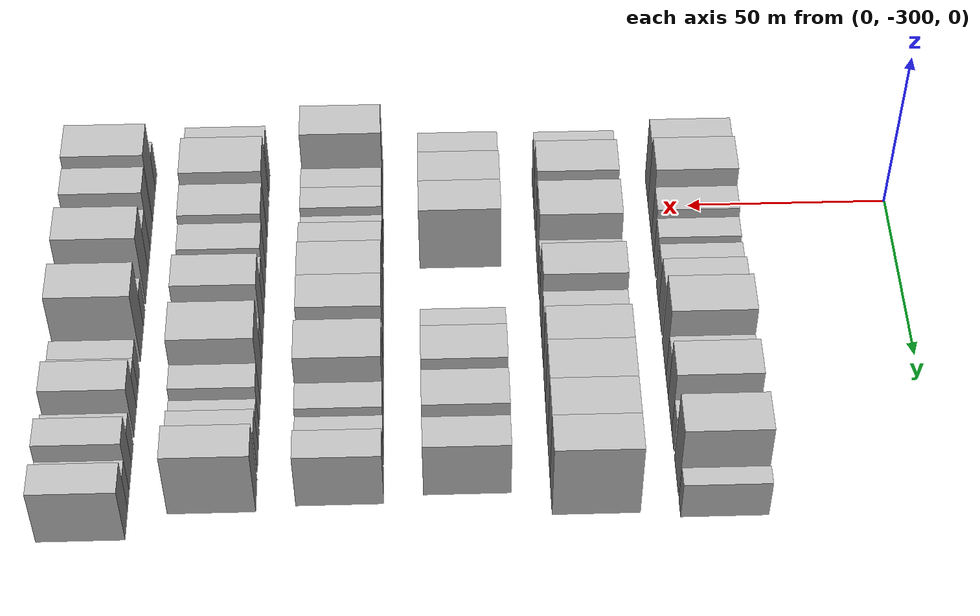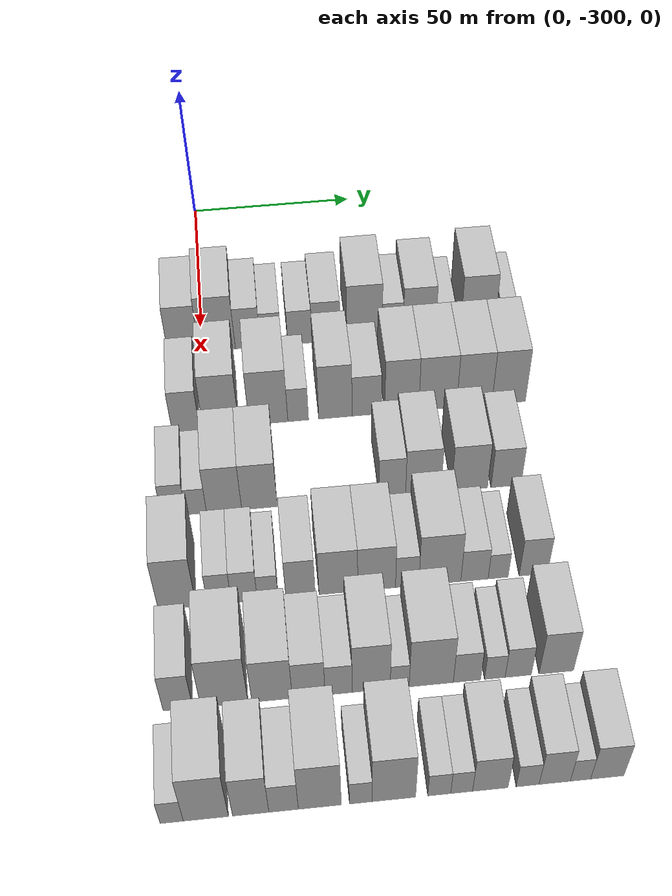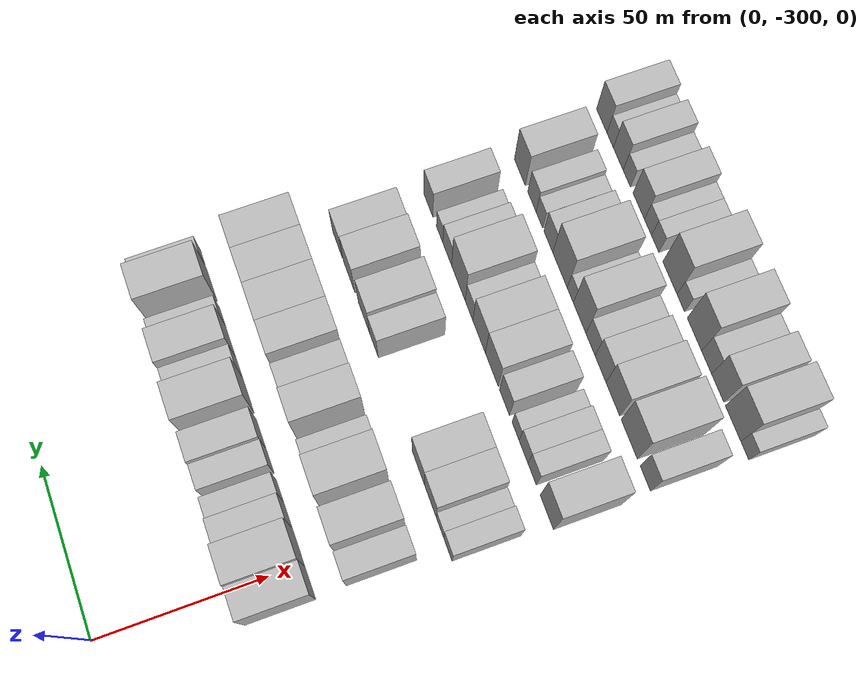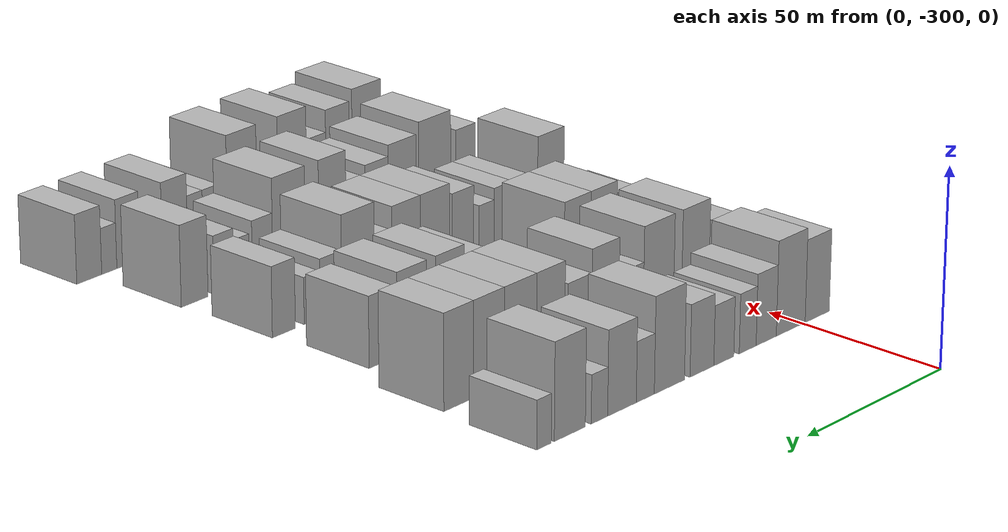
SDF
<sdf version="1.6">
 <world name="default">
  <model name="building_24">
   <static>1</static>
   <pose>50.0000 -305.5081 0 0.000000 0.000000 0.000000</pose>
   <link name="link">
    <pose>0 0 10.50 0 0 0</pose>
    <collision name="collision"><geometry><box><size>20.0000 9.3333 21.0000</size></box></geometry></collision>
    <visual name="visual">
     <cast_shadows>0</cast_shadows>
     <geometry><box><size>20.0000 9.3333 21.0000</size></box></geometry>
     <material>
      <script>
       <uri>model://HANNAS_wall/materials/scripts</uri>
       <uri>model://HANNAS_wall/materials/textures</uri>
       <name>vrc/HANNAS_wall</name>
      </script>
     </material>
    </visual>
   </link>
  </model>
  <model name="building_25">
   <static>1</static>
   <pose>50.0000 -295.3437 0 0.000000 0.000000 0.000000</pose>
   <link name="link">
    <pose>0 0 12.00 0 0 0</pose>
    <collision name="collision"><geometry><box><size>20.0000 10.9955 24.0000</size></box></geometry></collision>
    <visual name="visual">
     <cast_shadows>0</cast_shadows>
     <geometry><box><size>20.0000 10.9955 24.0000</size></box></geometry>
     <material>
      <script>
       <uri>model://HANNAS_wall/materials/scripts</uri>
       <uri>model://HANNAS_wall/materials/textures</uri>
       <name>vrc/HANNAS_wall</name>
      </script>
     </material>
    </visual>
   </link>
  </model>
  <model name="building_26">
   <static>1</static>
   <pose>50.0000 -286.0446 0 0.000000 0.000000 0.000000</pose>
   <link name="link">
    <pose>0 0 9.00 0 0 0</pose>
    <collision name="collision"><geometry><box><size>20.0000 7.6027 18.0000</size></box></geometry></collision>
    <visual name="visual">
     <cast_shadows>0</cast_shadows>
     <geometry><box><size>20.0000 7.6027 18.0000</size></box></geometry>
     <material>
      <script>
       <uri>model://HANNAS_wall/materials/scripts</uri>
       <uri>model://HANNAS_wall/materials/textures</uri>
       <name>vrc/HANNAS_wall</name>
      </script>
     </material>
    </visual>
   </link>
  </model>
  <model name="building_27">
   <static>1</static>
   <pose>50.0000 -279.0902 0 0.000000 0.000000 0.000000</pose>
   <link name="link">
    <pose>0 0 7.50 0 0 0</pose>
    <collision name="collision"><geometry><box><size>20.0000 6.3062 15.0000</size></box></geometry></collision>
    <visual name="visual">
     <cast_shadows>0</cast_shadows>
     <geometry><box><size>20.0000 6.3062 15.0000</size></box></geometry>
     <material>
      <script>
       <uri>model://HANNAS_wall/materials/scripts</uri>
       <uri>model://HANNAS_wall/materials/textures</uri>
       <name>vrc/HANNAS_wall</name>
      </script>
     </material>
    </visual>
   </link>
  </model>
  <model name="building_28">
   <static>1</static>
   <pose>50.0000 -270.2554 0 0.000000 0.000000 0.000000</pose>
   <link name="link">
    <pose>0 0 7.50 0 0 0</pose>
    <collision name="collision"><geometry><box><size>20.0000 7.3635 15.0000</size></box></geometry></collision>
    <visual name="visual">
     <cast_shadows>0</cast_shadows>
     <geometry><box><size>20.0000 7.3635 15.0000</size></box></geometry>
     <material>
      <script>
       <uri>model://HANNAS_wall/materials/scripts</uri>
       <uri>model://HANNAS_wall/materials/textures</uri>
       <name>vrc/HANNAS_wall</name>
      </script>
     </material>
    </visual>
   </link>
  </model>
  <model name="building_29">
   <static>1</static>
   <pose>50.0000 -262.2435 0 0.000000 0.000000 0.000000</pose>
   <link name="link">
    <pose>0 0 9.00 0 0 0</pose>
    <collision name="collision"><geometry><box><size>20.0000 8.6604 18.0000</size></box></geometry></collision>
    <visual name="visual">
     <cast_shadows>0</cast_shadows>
     <geometry><box><size>20.0000 8.6604 18.0000</size></box></geometry>
     <material>
      <script>
       <uri>model://HANNAS_wall/materials/scripts</uri>
       <uri>model://HANNAS_wall/materials/textures</uri>
       <name>vrc/HANNAS_wall</name>
      </script>
     </material>
    </visual>
   </link>
  </model>
  <model name="building_30">
   <static>1</static>
   <pose>50.0000 -250.5087 0 0.000000 0.000000 0.000000</pose>
   <link name="link">
    <pose>0 0 12.00 0 0 0</pose>
    <collision name="collision"><geometry><box><size>20.0000 10.8093 24.0000</size></box></geometry></collision>
    <visual name="visual">
     <cast_shadows>0</cast_shadows>
     <geometry><box><size>20.0000 10.8093 24.0000</size></box></geometry>
     <material>
      <script>
       <uri>model://HANNAS_wall/materials/scripts</uri>
       <uri>model://HANNAS_wall/materials/textures</uri>
       <name>vrc/HANNAS_wall</name>
      </script>
     </material>
    </visual>
   </link>
  </model>
  <model name="building_31">
   <static>1</static>
   <pose>50.0000 -241.9129 0 0.000000 0.000000 0.000000</pose>
   <link name="link">
    <pose>0 0 7.50 0 0 0</pose>
    <collision name="collision"><geometry><box><size>20.0000 6.3821 15.0000</size></box></geometry></collision>
    <visual name="visual">
     <cast_shadows>0</cast_shadows>
     <geometry><box><size>20.0000 6.3821 15.0000</size></box></geometry>
     <material>
      <script>
       <uri>model://HANNAS_wall/materials/scripts</uri>
       <uri>model://HANNAS_wall/materials/textures</uri>
       <name>vrc/HANNAS_wall</name>
      </script>
     </material>
    </visual>
   </link>
  </model>
  <model name="building_32">
   <static>1</static>
   <pose>50.0000 -233.7276 0 0.000000 0.000000 0.000000</pose>
   <link name="link">
    <pose>0 0 10.50 0 0 0</pose>
    <collision name="collision"><geometry><box><size>20.0000 9.9886 21.0000</size></box></geometry></collision>
    <visual name="visual">
     <cast_shadows>0</cast_shadows>
     <geometry><box><size>20.0000 9.9886 21.0000</size></box></geometry>
     <material>
      <script>
       <uri>model://HANNAS_wall/materials/scripts</uri>
       <uri>model://HANNAS_wall/materials/textures</uri>
       <name>vrc/HANNAS_wall</name>
      </script>
     </material>
    </visual>
   </link>
  </model>
  <model name="building_33">
   <static>1</static>
   <pose>50.0000 -225.8891 0 0.000000 0.000000 0.000000</pose>
   <link name="link">
    <pose>0 0 6.00 0 0 0</pose>
    <collision name="collision"><geometry><box><size>20.0000 5.6884 12.0000</size></box></geometry></collision>
    <visual name="visual">
     <cast_shadows>0</cast_shadows>
     <geometry><box><size>20.0000 5.6884 12.0000</size></box></geometry>
     <material>
      <script>
       <uri>model://HANNAS_wall/materials/scripts</uri>
       <uri>model://HANNAS_wall/materials/textures</uri>
       <name>vrc/HANNAS_wall</name>
      </script>
     </material>
    </visual>
   </link>
  </model>
  <model name="building_34">
   <static>1</static>
   <pose>50.0000 -215.7499 0 0.000000 0.000000 0.000000</pose>
   <link name="link">
    <pose>0 0 12.00 0 0 0</pose>
    <collision name="collision"><geometry><box><size>20.0000 10.5898 24.0000</size></box></geometry></collision>
    <visual name="visual">
     <cast_shadows>0</cast_shadows>
     <geometry><box><size>20.0000 10.5898 24.0000</size></box></geometry>
     <material>
      <script>
       <uri>model://HANNAS_wall/materials/scripts</uri>
       <uri>model://HANNAS_wall/materials/textures</uri>
       <name>vrc/HANNAS_wall</name>
      </script>
     </material>
    </visual>
   </link>
  </model>
  <model name="building_35">
   <static>1</static>
   <pose>50.0000 -207.0092 0 0.000000 0.000000 0.000000</pose>
   <link name="link">
    <pose>0 0 6.00 0 0 0</pose>
    <collision name="collision"><geometry><box><size>20.0000 4.8917 12.0000</size></box></geometry></collision>
    <visual name="visual">
     <cast_shadows>0</cast_shadows>
     <geometry><box><size>20.0000 4.8917 12.0000</size></box></geometry>
     <material>
      <script>
       <uri>model://HANNAS_wall/materials/scripts</uri>
       <uri>model://HANNAS_wall/materials/textures</uri>
       <name>vrc/HANNAS_wall</name>
      </script>
     </material>
    </visual>
   </link>
  </model>
  <model name="building_136">
   <static>1</static>
   <pose>79.0000 -305.5869 0 0.000000 0.000000 0.000000</pose>
   <link name="link">
    <pose>0 0 9.00 0 0 0</pose>
    <collision name="collision"><geometry><box><size>20.0000 7.9473 18.0000</size></box></geometry></collision>
    <visual name="visual">
     <cast_shadows>0</cast_shadows>
     <geometry><box><size>20.0000 7.9473 18.0000</size></box></geometry>
     <material>
      <script>
       <uri>model://HANNAS_wall/materials/scripts</uri>
       <uri>model://HANNAS_wall/materials/textures</uri>
       <name>vrc/HANNAS_wall</name>
      </script>
     </material>
    </visual>
   </link>
  </model>
  <model name="building_137">
   <static>1</static>
   <pose>79.0000 -295.4391 0 0.000000 0.000000 0.000000</pose>
   <link name="link">
    <pose>0 0 12.00 0 0 0</pose>
    <collision name="collision"><geometry><box><size>20.0000 10.3483 24.0000</size></box></geometry></collision>
    <visual name="visual">
     <cast_shadows>0</cast_shadows>
     <geometry><box><size>20.0000 10.3483 24.0000</size></box></geometry>
     <material>
      <script>
       <uri>model://HANNAS_wall/materials/scripts</uri>
       <uri>model://HANNAS_wall/materials/textures</uri>
       <name>vrc/HANNAS_wall</name>
      </script>
     </material>
    </visual>
   </link>
  </model>
  <model name="building_138">
   <static>1</static>
   <pose>79.0000 -281.6261 0 0.000000 0.000000 0.000000</pose>
   <link name="link">
    <pose>0 0 12.00 0 0 0</pose>
    <collision name="collision"><geometry><box><size>20.0000 11.2776 24.0000</size></box></geometry></collision>
    <visual name="visual">
     <cast_shadows>0</cast_shadows>
     <geometry><box><size>20.0000 11.2776 24.0000</size></box></geometry>
     <material>
      <script>
       <uri>model://HANNAS_wall/materials/scripts</uri>
       <uri>model://HANNAS_wall/materials/textures</uri>
       <name>vrc/HANNAS_wall</name>
      </script>
     </material>
    </visual>
   </link>
  </model>
  <model name="building_139">
   <static>1</static>
   <pose>79.0000 -272.9821 0 0.000000 0.000000 0.000000</pose>
   <link name="link">
    <pose>0 0 7.50 0 0 0</pose>
    <collision name="collision"><geometry><box><size>20.0000 6.0104 15.0000</size></box></geometry></collision>
    <visual name="visual">
     <cast_shadows>0</cast_shadows>
     <geometry><box><size>20.0000 6.0104 15.0000</size></box></geometry>
     <material>
      <script>
       <uri>model://HANNAS_wall/materials/scripts</uri>
       <uri>model://HANNAS_wall/materials/textures</uri>
       <name>vrc/HANNAS_wall</name>
      </script>
     </material>
    </visual>
   </link>
  </model>
  <model name="building_140">
   <static>1</static>
   <pose>79.0000 -262.0751 0 0.000000 0.000000 0.000000</pose>
   <link name="link">
    <pose>0 0 12.00 0 0 0</pose>
    <collision name="collision"><geometry><box><size>20.0000 9.8037 24.0000</size></box></geometry></collision>
    <visual name="visual">
     <cast_shadows>0</cast_shadows>
     <geometry><box><size>20.0000 9.8037 24.0000</size></box></geometry>
     <material>
      <script>
       <uri>model://HANNAS_wall/materials/scripts</uri>
       <uri>model://HANNAS_wall/materials/textures</uri>
       <name>vrc/HANNAS_wall</name>
      </script>
     </material>
    </visual>
   </link>
  </model>
  <model name="building_141">
   <static>1</static>
   <pose>79.0000 -252.8849 0 0.000000 0.000000 0.000000</pose>
   <link name="link">
    <pose>0 0 9.00 0 0 0</pose>
    <collision name="collision"><geometry><box><size>20.0000 8.5766 18.0000</size></box></geometry></collision>
    <visual name="visual">
     <cast_shadows>0</cast_shadows>
     <geometry><box><size>20.0000 8.5766 18.0000</size></box></geometry>
     <material>
      <script>
       <uri>model://HANNAS_wall/materials/scripts</uri>
       <uri>model://HANNAS_wall/materials/textures</uri>
       <name>vrc/HANNAS_wall</name>
      </script>
     </material>
    </visual>
   </link>
  </model>
  <model name="building_142">
   <static>1</static>
   <pose>79.0000 -242.6174 0 0.000000 0.000000 0.000000</pose>
   <link name="link">
    <pose>0 0 12.00 0 0 0</pose>
    <collision name="collision"><geometry><box><size>20.0000 9.9583 24.0000</size></box></geometry></collision>
    <visual name="visual">
     <cast_shadows>0</cast_shadows>
     <geometry><box><size>20.0000 9.9583 24.0000</size></box></geometry>
     <material>
      <script>
       <uri>model://HANNAS_wall/materials/scripts</uri>
       <uri>model://HANNAS_wall/materials/textures</uri>
       <name>vrc/HANNAS_wall</name>
      </script>
     </material>
    </visual>
   </link>
  </model>
  <model name="building_143">
   <static>1</static>
   <pose>79.0000 -232.0406 0 0.000000 0.000000 0.000000</pose>
   <link name="link">
    <pose>0 0 12.00 0 0 0</pose>
    <collision name="collision"><geometry><box><size>20.0000 11.1955 24.0000</size></box></geometry></collision>
    <visual name="visual">
     <cast_shadows>0</cast_shadows>
     <geometry><box><size>20.0000 11.1955 24.0000</size></box></geometry>
     <material>
      <script>
       <uri>model://HANNAS_wall/materials/scripts</uri>
       <uri>model://HANNAS_wall/materials/textures</uri>
       <name>vrc/HANNAS_wall</name>
      </script>
     </material>
    </visual>
   </link>
  </model>
  <model name="building_144">
   <static>1</static>
   <pose>79.0000 -221.2223 0 0.000000 0.000000 0.000000</pose>
   <link name="link">
    <pose>0 0 12.00 0 0 0</pose>
    <collision name="collision"><geometry><box><size>20.0000 10.4411 24.0000</size></box></geometry></collision>
    <visual name="visual">
     <cast_shadows>0</cast_shadows>
     <geometry><box><size>20.0000 10.4411 24.0000</size></box></geometry>
     <material>
      <script>
       <uri>model://HANNAS_wall/materials/scripts</uri>
       <uri>model://HANNAS_wall/materials/textures</uri>
       <name>vrc/HANNAS_wall</name>
      </script>
     </material>
    </visual>
   </link>
  </model>
  <model name="building_145">
   <static>1</static>
   <pose>79.0000 -211.0286 0 0.000000 0.000000 0.000000</pose>
   <link name="link">
    <pose>0 0 12.00 0 0 0</pose>
    <collision name="collision"><geometry><box><size>20.0000 9.9463 24.0000</size></box></geometry></collision>
    <visual name="visual">
     <cast_shadows>0</cast_shadows>
     <geometry><box><size>20.0000 9.9463 24.0000</size></box></geometry>
     <material>
      <script>
       <uri>model://HANNAS_wall/materials/scripts</uri>
       <uri>model://HANNAS_wall/materials/textures</uri>
       <name>vrc/HANNAS_wall</name>
      </script>
     </material>
    </visual>
   </link>
  </model>
  <model name="building_243">
   <static>1</static>
   <pose>108.0000 -309.7027 0 0.000000 0.000000 0.000000</pose>
   <link name="link">
    <pose>0 0 7.50 0 0 0</pose>
    <collision name="collision"><geometry><box><size>20.0000 6.6904 15.0000</size></box></geometry></collision>
    <visual name="visual">
     <cast_shadows>0</cast_shadows>
     <geometry><box><size>20.0000 6.6904 15.0000</size></box></geometry>
     <material>
      <script>
       <uri>model://HANNAS_wall/materials/scripts</uri>
       <uri>model://HANNAS_wall/materials/textures</uri>
       <name>vrc/HANNAS_wall</name>
      </script>
     </material>
    </visual>
   </link>
  </model>
  <model name="building_244">
   <static>1</static>
   <pose>108.0000 -303.5017 0 0.000000 0.000000 0.000000</pose>
   <link name="link">
    <pose>0 0 6.00 0 0 0</pose>
    <collision name="collision"><geometry><box><size>20.0000 5.7115 12.0000</size></box></geometry></collision>
    <visual name="visual">
     <cast_shadows>0</cast_shadows>
     <geometry><box><size>20.0000 5.7115 12.0000</size></box></geometry>
     <material>
      <script>
       <uri>model://HANNAS_wall/materials/scripts</uri>
       <uri>model://HANNAS_wall/materials/textures</uri>
       <name>vrc/HANNAS_wall</name>
      </script>
     </material>
    </visual>
   </link>
  </model>
  <model name="building_245">
   <static>1</static>
   <pose>108.0000 -295.7730 0 0.000000 0.000000 0.000000</pose>
   <link name="link">
    <pose>0 0 10.50 0 0 0</pose>
    <collision name="collision"><geometry><box><size>20.0000 9.7459 21.0000</size></box></geometry></collision>
    <visual name="visual">
     <cast_shadows>0</cast_shadows>
     <geometry><box><size>20.0000 9.7459 21.0000</size></box></geometry>
     <material>
      <script>
       <uri>model://HANNAS_wall/materials/scripts</uri>
       <uri>model://HANNAS_wall/materials/textures</uri>
       <name>vrc/HANNAS_wall</name>
      </script>
     </material>
    </visual>
   </link>
  </model>
  <model name="building_246">
   <static>1</static>
   <pose>108.0000 -285.9573 0 0.000000 0.000000 0.000000</pose>
   <link name="link">
    <pose>0 0 10.50 0 0 0</pose>
    <collision name="collision"><geometry><box><size>20.0000 9.8856 21.0000</size></box></geometry></collision>
    <visual name="visual">
     <cast_shadows>0</cast_shadows>
     <geometry><box><size>20.0000 9.8856 21.0000</size></box></geometry>
     <material>
      <script>
       <uri>model://HANNAS_wall/materials/scripts</uri>
       <uri>model://HANNAS_wall/materials/textures</uri>
       <name>vrc/HANNAS_wall</name>
      </script>
     </material>
    </visual>
   </link>
  </model>
  <model name="building_247">
   <static>1</static>
   <pose>108.0000 -248.8084 0 0.000000 0.000000 0.000000</pose>
   <link name="link">
    <pose>0 0 9.00 0 0 0</pose>
    <collision name="collision"><geometry><box><size>20.0000 7.4707 18.0000</size></box></geometry></collision>
    <visual name="visual">
     <cast_shadows>0</cast_shadows>
     <geometry><box><size>20.0000 7.4707 18.0000</size></box></geometry>
     <material>
      <script>
       <uri>model://HANNAS_wall/materials/scripts</uri>
       <uri>model://HANNAS_wall/materials/textures</uri>
       <name>vrc/HANNAS_wall</name>
      </script>
     </material>
    </visual>
   </link>
  </model>
  <model name="building_248">
   <static>1</static>
   <pose>108.0000 -240.0810 0 0.000000 0.000000 0.000000</pose>
   <link name="link">
    <pose>0 0 10.50 0 0 0</pose>
    <collision name="collision"><geometry><box><size>20.0000 9.9841 21.0000</size></box></geometry></collision>
    <visual name="visual">
     <cast_shadows>0</cast_shadows>
     <geometry><box><size>20.0000 9.9841 21.0000</size></box></geometry>
     <material>
      <script>
       <uri>model://HANNAS_wall/materials/scripts</uri>
       <uri>model://HANNAS_wall/materials/textures</uri>
       <name>vrc/HANNAS_wall</name>
      </script>
     </material>
    </visual>
   </link>
  </model>
  <model name="building_249">
   <static>1</static>
   <pose>108.0000 -227.0009 0 0.000000 0.000000 0.000000</pose>
   <link name="link">
    <pose>0 0 10.50 0 0 0</pose>
    <collision name="collision"><geometry><box><size>20.0000 10.1761 21.0000</size></box></geometry></collision>
    <visual name="visual">
     <cast_shadows>0</cast_shadows>
     <geometry><box><size>20.0000 10.1761 21.0000</size></box></geometry>
     <material>
      <script>
       <uri>model://HANNAS_wall/materials/scripts</uri>
       <uri>model://HANNAS_wall/materials/textures</uri>
       <name>vrc/HANNAS_wall</name>
      </script>
     </material>
    </visual>
   </link>
  </model>
  <model name="building_250">
   <static>1</static>
   <pose>108.0000 -216.6457 0 0.000000 0.000000 0.000000</pose>
   <link name="link">
    <pose>0 0 9.00 0 0 0</pose>
    <collision name="collision"><geometry><box><size>20.0000 8.5343 18.0000</size></box></geometry></collision>
    <visual name="visual">
     <cast_shadows>0</cast_shadows>
     <geometry><box><size>20.0000 8.5343 18.0000</size></box></geometry>
     <material>
      <script>
       <uri>model://HANNAS_wall/materials/scripts</uri>
       <uri>model://HANNAS_wall/materials/textures</uri>
       <name>vrc/HANNAS_wall</name>
      </script>
     </material>
    </visual>
   </link>
  </model>
  <model name="building_356">
   <static>1</static>
   <pose>137.0000 -309.4572 0 0.000000 0.000000 0.000000</pose>
   <link name="link">
    <pose>0 0 12.00 0 0 0</pose>
    <collision name="collision"><geometry><box><size>20.0000 10.0063 24.0000</size></box></geometry></collision>
    <visual name="visual">
     <cast_shadows>0</cast_shadows>
     <geometry><box><size>20.0000 10.0063 24.0000</size></box></geometry>
     <material>
      <script>
       <uri>model://HANNAS_wall/materials/scripts</uri>
       <uri>model://HANNAS_wall/materials/textures</uri>
       <name>vrc/HANNAS_wall</name>
      </script>
     </material>
    </visual>
   </link>
  </model>
  <model name="building_357">
   <static>1</static>
   <pose>137.0000 -298.2726 0 0.000000 0.000000 0.000000</pose>
   <link name="link">
    <pose>0 0 7.50 0 0 0</pose>
    <collision name="collision"><geometry><box><size>20.0000 6.3630 15.0000</size></box></geometry></collision>
    <visual name="visual">
     <cast_shadows>0</cast_shadows>
     <geometry><box><size>20.0000 6.3630 15.0000</size></box></geometry>
     <material>
      <script>
       <uri>model://HANNAS_wall/materials/scripts</uri>
       <uri>model://HANNAS_wall/materials/textures</uri>
       <name>vrc/HANNAS_wall</name>
      </script>
     </material>
    </visual>
   </link>
  </model>
  <model name="building_358">
   <static>1</static>
   <pose>137.0000 -291.6534 0 0.000000 0.000000 0.000000</pose>
   <link name="link">
    <pose>0 0 7.50 0 0 0</pose>
    <collision name="collision"><geometry><box><size>20.0000 6.8754 15.0000</size></box></geometry></collision>
    <visual name="visual">
     <cast_shadows>0</cast_shadows>
     <geometry><box><size>20.0000 6.8754 15.0000</size></box></geometry>
     <material>
      <script>
       <uri>model://HANNAS_wall/materials/scripts</uri>
       <uri>model://HANNAS_wall/materials/textures</uri>
       <name>vrc/HANNAS_wall</name>
      </script>
     </material>
    </visual>
   </link>
  </model>
  <model name="building_359">
   <static>1</static>
   <pose>137.0000 -285.4495 0 0.000000 0.000000 0.000000</pose>
   <link name="link">
    <pose>0 0 6.00 0 0 0</pose>
    <collision name="collision"><geometry><box><size>20.0000 5.5324 12.0000</size></box></geometry></collision>
    <visual name="visual">
     <cast_shadows>0</cast_shadows>
     <geometry><box><size>20.0000 5.5324 12.0000</size></box></geometry>
     <material>
      <script>
       <uri>model://HANNAS_wall/materials/scripts</uri>
       <uri>model://HANNAS_wall/materials/textures</uri>
       <name>vrc/HANNAS_wall</name>
      </script>
     </material>
    </visual>
   </link>
  </model>
  <model name="building_360">
   <static>1</static>
   <pose>137.0000 -276.7561 0 0.000000 0.000000 0.000000</pose>
   <link name="link">
    <pose>0 0 9.00 0 0 0</pose>
    <collision name="collision"><geometry><box><size>20.0000 7.8545 18.0000</size></box></geometry></collision>
    <visual name="visual">
     <cast_shadows>0</cast_shadows>
     <geometry><box><size>20.0000 7.8545 18.0000</size></box></geometry>
     <material>
      <script>
       <uri>model://HANNAS_wall/materials/scripts</uri>
       <uri>model://HANNAS_wall/materials/textures</uri>
       <name>vrc/HANNAS_wall</name>
      </script>
     </material>
    </visual>
   </link>
  </model>
  <model name="building_361">
   <static>1</static>
   <pose>137.0000 -266.6364 0 0.000000 0.000000 0.000000</pose>
   <link name="link">
    <pose>0 0 10.50 0 0 0</pose>
    <collision name="collision"><geometry><box><size>20.0000 10.3848 21.0000</size></box></geometry></collision>
    <visual name="visual">
     <cast_shadows>0</cast_shadows>
     <geometry><box><size>20.0000 10.3848 21.0000</size></box></geometry>
     <material>
      <script>
       <uri>model://HANNAS_wall/materials/scripts</uri>
       <uri>model://HANNAS_wall/materials/textures</uri>
       <name>vrc/HANNAS_wall</name>
      </script>
     </material>
    </visual>
   </link>
  </model>
  <model name="building_362">
   <static>1</static>
   <pose>137.0000 -256.3938 0 0.000000 0.000000 0.000000</pose>
   <link name="link">
    <pose>0 0 10.50 0 0 0</pose>
    <collision name="collision"><geometry><box><size>20.0000 10.1005 21.0000</size></box></geometry></collision>
    <visual name="visual">
     <cast_shadows>0</cast_shadows>
     <geometry><box><size>20.0000 10.1005 21.0000</size></box></geometry>
     <material>
      <script>
       <uri>model://HANNAS_wall/materials/scripts</uri>
       <uri>model://HANNAS_wall/materials/textures</uri>
       <name>vrc/HANNAS_wall</name>
      </script>
     </material>
    </visual>
   </link>
  </model>
  <model name="building_363">
   <static>1</static>
   <pose>137.0000 -248.2195 0 0.000000 0.000000 0.000000</pose>
   <link name="link">
    <pose>0 0 7.50 0 0 0</pose>
    <collision name="collision"><geometry><box><size>20.0000 6.2481 15.0000</size></box></geometry></collision>
    <visual name="visual">
     <cast_shadows>0</cast_shadows>
     <geometry><box><size>20.0000 6.2481 15.0000</size></box></geometry>
     <material>
      <script>
       <uri>model://HANNAS_wall/materials/scripts</uri>
       <uri>model://HANNAS_wall/materials/textures</uri>
       <name>vrc/HANNAS_wall</name>
      </script>
     </material>
    </visual>
   </link>
  </model>
  <model name="building_364">
   <static>1</static>
   <pose>137.0000 -239.4212 0 0.000000 0.000000 0.000000</pose>
   <link name="link">
    <pose>0 0 12.00 0 0 0</pose>
    <collision name="collision"><geometry><box><size>20.0000 11.3484 24.0000</size></box></geometry></collision>
    <visual name="visual">
     <cast_shadows>0</cast_shadows>
     <geometry><box><size>20.0000 11.3484 24.0000</size></box></geometry>
     <material>
      <script>
       <uri>model://HANNAS_wall/materials/scripts</uri>
       <uri>model://HANNAS_wall/materials/textures</uri>
       <name>vrc/HANNAS_wall</name>
      </script>
     </material>
    </visual>
   </link>
  </model>
  <model name="building_365">
   <static>1</static>
   <pose>137.0000 -230.0456 0 0.000000 0.000000 0.000000</pose>
   <link name="link">
    <pose>0 0 7.50 0 0 0</pose>
    <collision name="collision"><geometry><box><size>20.0000 7.4028 15.0000</size></box></geometry></collision>
    <visual name="visual">
     <cast_shadows>0</cast_shadows>
     <geometry><box><size>20.0000 7.4028 15.0000</size></box></geometry>
     <material>
      <script>
       <uri>model://HANNAS_wall/materials/scripts</uri>
       <uri>model://HANNAS_wall/materials/textures</uri>
       <name>vrc/HANNAS_wall</name>
      </script>
     </material>
    </visual>
   </link>
  </model>
  <model name="building_366">
   <static>1</static>
   <pose>137.0000 -223.6274 0 0.000000 0.000000 0.000000</pose>
   <link name="link">
    <pose>0 0 6.00 0 0 0</pose>
    <collision name="collision"><geometry><box><size>20.0000 5.4336 12.0000</size></box></geometry></collision>
    <visual name="visual">
     <cast_shadows>0</cast_shadows>
     <geometry><box><size>20.0000 5.4336 12.0000</size></box></geometry>
     <material>
      <script>
       <uri>model://HANNAS_wall/materials/scripts</uri>
       <uri>model://HANNAS_wall/materials/textures</uri>
       <name>vrc/HANNAS_wall</name>
      </script>
     </material>
    </visual>
   </link>
  </model>
  <model name="building_367">
   <static>1</static>
   <pose>137.0000 -214.0509 0 0.000000 0.000000 0.000000</pose>
   <link name="link">
    <pose>0 0 9.00 0 0 0</pose>
    <collision name="collision"><geometry><box><size>20.0000 7.7193 18.0000</size></box></geometry></collision>
    <visual name="visual">
     <cast_shadows>0</cast_shadows>
     <geometry><box><size>20.0000 7.7193 18.0000</size></box></geometry>
     <material>
      <script>
       <uri>model://HANNAS_wall/materials/scripts</uri>
       <uri>model://HANNAS_wall/materials/textures</uri>
       <name>vrc/HANNAS_wall</name>
      </script>
     </material>
    </visual>
   </link>
  </model>
  <model name="building_466">
   <static>1</static>
   <pose>166.0000 -309.9476 0 0.000000 0.000000 0.000000</pose>
   <link name="link">
    <pose>0 0 9.00 0 0 0</pose>
    <collision name="collision"><geometry><box><size>20.0000 7.4445 18.0000</size></box></geometry></collision>
    <visual name="visual">
     <cast_shadows>0</cast_shadows>
     <geometry><box><size>20.0000 7.4445 18.0000</size></box></geometry>
     <material>
      <script>
       <uri>model://HANNAS_wall/materials/scripts</uri>
       <uri>model://HANNAS_wall/materials/textures</uri>
       <name>vrc/HANNAS_wall</name>
      </script>
     </material>
    </visual>
   </link>
  </model>
  <model name="building_467">
   <static>1</static>
   <pose>166.0000 -298.2692 0 0.000000 0.000000 0.000000</pose>
   <link name="link">
    <pose>0 0 12.00 0 0 0</pose>
    <collision name="collision"><geometry><box><size>20.0000 11.9123 24.0000</size></box></geometry></collision>
    <visual name="visual">
     <cast_shadows>0</cast_shadows>
     <geometry><box><size>20.0000 11.9123 24.0000</size></box></geometry>
     <material>
      <script>
       <uri>model://HANNAS_wall/materials/scripts</uri>
       <uri>model://HANNAS_wall/materials/textures</uri>
       <name>vrc/HANNAS_wall</name>
      </script>
     </material>
    </visual>
   </link>
  </model>
  <model name="building_468">
   <static>1</static>
   <pose>166.0000 -286.1967 0 0.000000 0.000000 0.000000</pose>
   <link name="link">
    <pose>0 0 10.50 0 0 0</pose>
    <collision name="collision"><geometry><box><size>20.0000 10.2327 21.0000</size></box></geometry></collision>
    <visual name="visual">
     <cast_shadows>0</cast_shadows>
     <geometry><box><size>20.0000 10.2327 21.0000</size></box></geometry>
     <material>
      <script>
       <uri>model://HANNAS_wall/materials/scripts</uri>
       <uri>model://HANNAS_wall/materials/textures</uri>
       <name>vrc/HANNAS_wall</name>
      </script>
     </material>
    </visual>
   </link>
  </model>
  <model name="building_469">
   <static>1</static>
   <pose>166.0000 -276.9165 0 0.000000 0.000000 0.000000</pose>
   <link name="link">
    <pose>0 0 9.00 0 0 0</pose>
    <collision name="collision"><geometry><box><size>20.0000 8.3278 18.0000</size></box></geometry></collision>
    <visual name="visual">
     <cast_shadows>0</cast_shadows>
     <geometry><box><size>20.0000 8.3278 18.0000</size></box></geometry>
     <material>
      <script>
       <uri>model://HANNAS_wall/materials/scripts</uri>
       <uri>model://HANNAS_wall/materials/textures</uri>
       <name>vrc/HANNAS_wall</name>
      </script>
     </material>
    </visual>
   </link>
  </model>
  <model name="building_470">
   <static>1</static>
   <pose>166.0000 -269.2813 0 0.000000 0.000000 0.000000</pose>
   <link name="link">
    <pose>0 0 7.50 0 0 0</pose>
    <collision name="collision"><geometry><box><size>20.0000 6.9424 15.0000</size></box></geometry></collision>
    <visual name="visual">
     <cast_shadows>0</cast_shadows>
     <geometry><box><size>20.0000 6.9424 15.0000</size></box></geometry>
     <material>
      <script>
       <uri>model://HANNAS_wall/materials/scripts</uri>
       <uri>model://HANNAS_wall/materials/textures</uri>
       <name>vrc/HANNAS_wall</name>
      </script>
     </material>
    </visual>
   </link>
  </model>
  <model name="building_471">
   <static>1</static>
   <pose>166.0000 -260.9766 0 0.000000 0.000000 0.000000</pose>
   <link name="link">
    <pose>0 0 12.00 0 0 0</pose>
    <collision name="collision"><geometry><box><size>20.0000 9.6672 24.0000</size></box></geometry></collision>
    <visual name="visual">
     <cast_shadows>0</cast_shadows>
     <geometry><box><size>20.0000 9.6672 24.0000</size></box></geometry>
     <material>
      <script>
       <uri>model://HANNAS_wall/materials/scripts</uri>
       <uri>model://HANNAS_wall/materials/textures</uri>
       <name>vrc/HANNAS_wall</name>
      </script>
     </material>
    </visual>
   </link>
  </model>
  <model name="building_472">
   <static>1</static>
   <pose>166.0000 -253.7190 0 0.000000 0.000000 0.000000</pose>
   <link name="link">
    <pose>0 0 6.00 0 0 0</pose>
    <collision name="collision"><geometry><box><size>20.0000 4.8480 12.0000</size></box></geometry></collision>
    <visual name="visual">
     <cast_shadows>0</cast_shadows>
     <geometry><box><size>20.0000 4.8480 12.0000</size></box></geometry>
     <material>
      <script>
       <uri>model://HANNAS_wall/materials/scripts</uri>
       <uri>model://HANNAS_wall/materials/textures</uri>
       <name>vrc/HANNAS_wall</name>
      </script>
     </material>
    </visual>
   </link>
  </model>
  <model name="building_473">
   <static>1</static>
   <pose>166.0000 -245.6143 0 0.000000 0.000000 0.000000</pose>
   <link name="link">
    <pose>0 0 12.00 0 0 0</pose>
    <collision name="collision"><geometry><box><size>20.0000 11.3614 24.0000</size></box></geometry></collision>
    <visual name="visual">
     <cast_shadows>0</cast_shadows>
     <geometry><box><size>20.0000 11.3614 24.0000</size></box></geometry>
     <material>
      <script>
       <uri>model://HANNAS_wall/materials/scripts</uri>
       <uri>model://HANNAS_wall/materials/textures</uri>
       <name>vrc/HANNAS_wall</name>
      </script>
     </material>
    </visual>
   </link>
  </model>
  <model name="building_474">
   <static>1</static>
   <pose>166.0000 -236.4119 0 0.000000 0.000000 0.000000</pose>
   <link name="link">
    <pose>0 0 7.50 0 0 0</pose>
    <collision name="collision"><geometry><box><size>20.0000 7.0434 15.0000</size></box></geometry></collision>
    <visual name="visual">
     <cast_shadows>0</cast_shadows>
     <geometry><box><size>20.0000 7.0434 15.0000</size></box></geometry>
     <material>
      <script>
       <uri>model://HANNAS_wall/materials/scripts</uri>
       <uri>model://HANNAS_wall/materials/textures</uri>
       <name>vrc/HANNAS_wall</name>
      </script>
     </material>
    </visual>
   </link>
  </model>
  <model name="building_475">
   <static>1</static>
   <pose>166.0000 -229.2294 0 0.000000 0.000000 0.000000</pose>
   <link name="link">
    <pose>0 0 6.00 0 0 0</pose>
    <collision name="collision"><geometry><box><size>20.0000 5.3216 12.0000</size></box></geometry></collision>
    <visual name="visual">
     <cast_shadows>0</cast_shadows>
     <geometry><box><size>20.0000 5.3216 12.0000</size></box></geometry>
     <material>
      <script>
       <uri>model://HANNAS_wall/materials/scripts</uri>
       <uri>model://HANNAS_wall/materials/textures</uri>
       <name>vrc/HANNAS_wall</name>
      </script>
     </material>
    </visual>
   </link>
  </model>
  <model name="building_476">
   <static>1</static>
   <pose>166.0000 -223.1704 0 0.000000 0.000000 0.000000</pose>
   <link name="link">
    <pose>0 0 7.50 0 0 0</pose>
    <collision name="collision"><geometry><box><size>20.0000 6.7964 15.0000</size></box></geometry></collision>
    <visual name="visual">
     <cast_shadows>0</cast_shadows>
     <geometry><box><size>20.0000 6.7964 15.0000</size></box></geometry>
     <material>
      <script>
       <uri>model://HANNAS_wall/materials/scripts</uri>
       <uri>model://HANNAS_wall/materials/textures</uri>
       <name>vrc/HANNAS_wall</name>
      </script>
     </material>
    </visual>
   </link>
  </model>
  <model name="building_477">
   <static>1</static>
   <pose>166.0000 -213.2914 0 0.000000 0.000000 0.000000</pose>
   <link name="link">
    <pose>0 0 10.50 0 0 0</pose>
    <collision name="collision"><geometry><box><size>20.0000 8.9615 21.0000</size></box></geometry></collision>
    <visual name="visual">
     <cast_shadows>0</cast_shadows>
     <geometry><box><size>20.0000 8.9615 21.0000</size></box></geometry>
     <material>
      <script>
       <uri>model://HANNAS_wall/materials/scripts</uri>
       <uri>model://HANNAS_wall/materials/textures</uri>
       <name>vrc/HANNAS_wall</name>
      </script>
     </material>
    </visual>
   </link>
  </model>
  <model name="building_586">
   <static>1</static>
   <pose>195.0000 -312.1520 0 0.000000 0.000000 0.000000</pose>
   <link name="link">
    <pose>0 0 6.00 0 0 0</pose>
    <collision name="collision"><geometry><box><size>20.0000 5.5309 12.0000</size></box></geometry></collision>
    <visual name="visual">
     <cast_shadows>0</cast_shadows>
     <geometry><box><size>20.0000 5.5309 12.0000</size></box></geometry>
     <material>
      <script>
       <uri>model://HANNAS_wall/materials/scripts</uri>
       <uri>model://HANNAS_wall/materials/textures</uri>
       <name>vrc/HANNAS_wall</name>
      </script>
     </material>
    </visual>
   </link>
  </model>
  <model name="building_587">
   <static>1</static>
   <pose>195.0000 -303.9894 0 0.000000 0.000000 0.000000</pose>
   <link name="link">
    <pose>0 0 12.00 0 0 0</pose>
    <collision name="collision"><geometry><box><size>20.0000 10.7941 24.0000</size></box></geometry></collision>
    <visual name="visual">
     <cast_shadows>0</cast_shadows>
     <geometry><box><size>20.0000 10.7941 24.0000</size></box></geometry>
     <material>
      <script>
       <uri>model://HANNAS_wall/materials/scripts</uri>
       <uri>model://HANNAS_wall/materials/textures</uri>
       <name>vrc/HANNAS_wall</name>
      </script>
     </material>
    </visual>
   </link>
  </model>
  <model name="building_588">
   <static>1</static>
   <pose>195.0000 -293.2295 0 0.000000 0.000000 0.000000</pose>
   <link name="link">
    <pose>0 0 10.50 0 0 0</pose>
    <collision name="collision"><geometry><box><size>20.0000 8.7257 21.0000</size></box></geometry></collision>
    <visual name="visual">
     <cast_shadows>0</cast_shadows>
     <geometry><box><size>20.0000 8.7257 21.0000</size></box></geometry>
     <material>
      <script>
       <uri>model://HANNAS_wall/materials/scripts</uri>
       <uri>model://HANNAS_wall/materials/textures</uri>
       <name>vrc/HANNAS_wall</name>
      </script>
     </material>
    </visual>
   </link>
  </model>
  <model name="building_589">
   <static>1</static>
   <pose>195.0000 -285.3154 0 0.000000 0.000000 0.000000</pose>
   <link name="link">
    <pose>0 0 7.50 0 0 0</pose>
    <collision name="collision"><geometry><box><size>20.0000 7.1025 15.0000</size></box></geometry></collision>
    <visual name="visual">
     <cast_shadows>0</cast_shadows>
     <geometry><box><size>20.0000 7.1025 15.0000</size></box></geometry>
     <material>
      <script>
       <uri>model://HANNAS_wall/materials/scripts</uri>
       <uri>model://HANNAS_wall/materials/textures</uri>
       <name>vrc/HANNAS_wall</name>
      </script>
     </material>
    </visual>
   </link>
  </model>
  <model name="building_590">
   <static>1</static>
   <pose>195.0000 -276.5749 0 0.000000 0.000000 0.000000</pose>
   <link name="link">
    <pose>0 0 12.00 0 0 0</pose>
    <collision name="collision"><geometry><box><size>20.0000 10.3786 24.0000</size></box></geometry></collision>
    <visual name="visual">
     <cast_shadows>0</cast_shadows>
     <geometry><box><size>20.0000 10.3786 24.0000</size></box></geometry>
     <material>
      <script>
       <uri>model://HANNAS_wall/materials/scripts</uri>
       <uri>model://HANNAS_wall/materials/textures</uri>
       <name>vrc/HANNAS_wall</name>
      </script>
     </material>
    </visual>
   </link>
  </model>
  <model name="building_591">
   <static>1</static>
   <pose>195.0000 -266.6280 0 0.000000 0.000000 0.000000</pose>
   <link name="link">
    <pose>0 0 6.00 0 0 0</pose>
    <collision name="collision"><geometry><box><size>20.0000 5.5152 12.0000</size></box></geometry></collision>
    <visual name="visual">
     <cast_shadows>0</cast_shadows>
     <geometry><box><size>20.0000 5.5152 12.0000</size></box></geometry>
     <material>
      <script>
       <uri>model://HANNAS_wall/materials/scripts</uri>
       <uri>model://HANNAS_wall/materials/textures</uri>
       <name>vrc/HANNAS_wall</name>
      </script>
     </material>
    </visual>
   </link>
  </model>
  <model name="building_592">
   <static>1</static>
   <pose>195.0000 -258.6038 0 0.000000 0.000000 0.000000</pose>
   <link name="link">
    <pose>0 0 12.00 0 0 0</pose>
    <collision name="collision"><geometry><box><size>20.0000 10.5334 24.0000</size></box></geometry></collision>
    <visual name="visual">
     <cast_shadows>0</cast_shadows>
     <geometry><box><size>20.0000 10.5334 24.0000</size></box></geometry>
     <material>
      <script>
       <uri>model://HANNAS_wall/materials/scripts</uri>
       <uri>model://HANNAS_wall/materials/textures</uri>
       <name>vrc/HANNAS_wall</name>
      </script>
     </material>
    </visual>
   </link>
  </model>
  <model name="building_593">
   <static>1</static>
   <pose>195.0000 -247.5337 0 0.000000 0.000000 0.000000</pose>
   <link name="link">
    <pose>0 0 6.00 0 0 0</pose>
    <collision name="collision"><geometry><box><size>20.0000 5.6067 12.0000</size></box></geometry></collision>
    <visual name="visual">
     <cast_shadows>0</cast_shadows>
     <geometry><box><size>20.0000 5.6067 12.0000</size></box></geometry>
     <material>
      <script>
       <uri>model://HANNAS_wall/materials/scripts</uri>
       <uri>model://HANNAS_wall/materials/textures</uri>
       <name>vrc/HANNAS_wall</name>
      </script>
     </material>
    </visual>
   </link>
  </model>
  <model name="building_594">
   <static>1</static>
   <pose>195.0000 -242.0629 0 0.000000 0.000000 0.000000</pose>
   <link name="link">
    <pose>0 0 6.00 0 0 0</pose>
    <collision name="collision"><geometry><box><size>20.0000 5.3349 12.0000</size></box></geometry></collision>
    <visual name="visual">
     <cast_shadows>0</cast_shadows>
     <geometry><box><size>20.0000 5.3349 12.0000</size></box></geometry>
     <material>
      <script>
       <uri>model://HANNAS_wall/materials/scripts</uri>
       <uri>model://HANNAS_wall/materials/textures</uri>
       <name>vrc/HANNAS_wall</name>
      </script>
     </material>
    </visual>
   </link>
  </model>
  <model name="building_595">
   <static>1</static>
   <pose>195.0000 -235.0372 0 0.000000 0.000000 0.000000</pose>
   <link name="link">
    <pose>0 0 9.00 0 0 0</pose>
    <collision name="collision"><geometry><box><size>20.0000 8.7166 18.0000</size></box></geometry></collision>
    <visual name="visual">
     <cast_shadows>0</cast_shadows>
     <geometry><box><size>20.0000 8.7166 18.0000</size></box></geometry>
     <material>
      <script>
       <uri>model://HANNAS_wall/materials/scripts</uri>
       <uri>model://HANNAS_wall/materials/textures</uri>
       <name>vrc/HANNAS_wall</name>
      </script>
     </material>
    </visual>
   </link>
  </model>
  <model name="building_596">
   <static>1</static>
   <pose>195.0000 -225.8423 0 0.000000 0.000000 0.000000</pose>
   <link name="link">
    <pose>0 0 6.00 0 0 0</pose>
    <collision name="collision"><geometry><box><size>20.0000 5.6732 12.0000</size></box></geometry></collision>
    <visual name="visual">
     <cast_shadows>0</cast_shadows>
     <geometry><box><size>20.0000 5.6732 12.0000</size></box></geometry>
     <material>
      <script>
       <uri>model://HANNAS_wall/materials/scripts</uri>
       <uri>model://HANNAS_wall/materials/textures</uri>
       <name>vrc/HANNAS_wall</name>
      </script>
     </material>
    </visual>
   </link>
  </model>
  <model name="building_597">
   <static>1</static>
   <pose>195.0000 -219.1507 0 0.000000 0.000000 0.000000</pose>
   <link name="link">
    <pose>0 0 9.00 0 0 0</pose>
    <collision name="collision"><geometry><box><size>20.0000 7.7100 18.0000</size></box></geometry></collision>
    <visual name="visual">
     <cast_shadows>0</cast_shadows>
     <geometry><box><size>20.0000 7.7100 18.0000</size></box></geometry>
     <material>
      <script>
       <uri>model://HANNAS_wall/materials/scripts</uri>
       <uri>model://HANNAS_wall/materials/textures</uri>
       <name>vrc/HANNAS_wall</name>
      </script>
     </material>
    </visual>
   </link>
  </model>
  <model name="building_598">
   <static>1</static>
   <pose>195.0000 -212.7763 0 0.000000 0.000000 0.000000</pose>
   <link name="link">
    <pose>0 0 6.00 0 0 0</pose>
    <collision name="collision"><geometry><box><size>20.0000 5.0390 12.0000</size></box></geometry></collision>
    <visual name="visual">
     <cast_shadows>0</cast_shadows>
     <geometry><box><size>20.0000 5.0390 12.0000</size></box></geometry>
     <material>
      <script>
       <uri>model://HANNAS_wall/materials/scripts</uri>
       <uri>model://HANNAS_wall/materials/textures</uri>
       <name>vrc/HANNAS_wall</name>
      </script>
     </material>
    </visual>
   </link>
  </model>
  <model name="building_599">
   <static>1</static>
   <pose>195.0000 -206.1259 0 0.000000 0.000000 0.000000</pose>
   <link name="link">
    <pose>0 0 9.00 0 0 0</pose>
    <collision name="collision"><geometry><box><size>20.0000 8.2617 18.0000</size></box></geometry></collision>
    <visual name="visual">
     <cast_shadows>0</cast_shadows>
     <geometry><box><size>20.0000 8.2617 18.0000</size></box></geometry>
     <material>
      <script>
       <uri>model://HANNAS_wall/materials/scripts</uri>
       <uri>model://HANNAS_wall/materials/textures</uri>
       <name>vrc/HANNAS_wall</name>
      </script>
     </material>
    </visual>
   </link>
  </model>
 </world>
</sdf>
